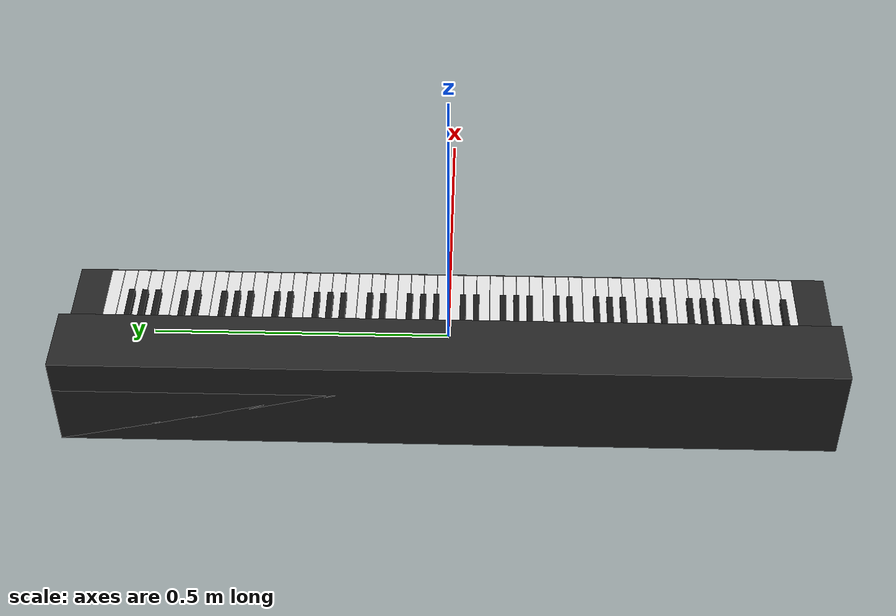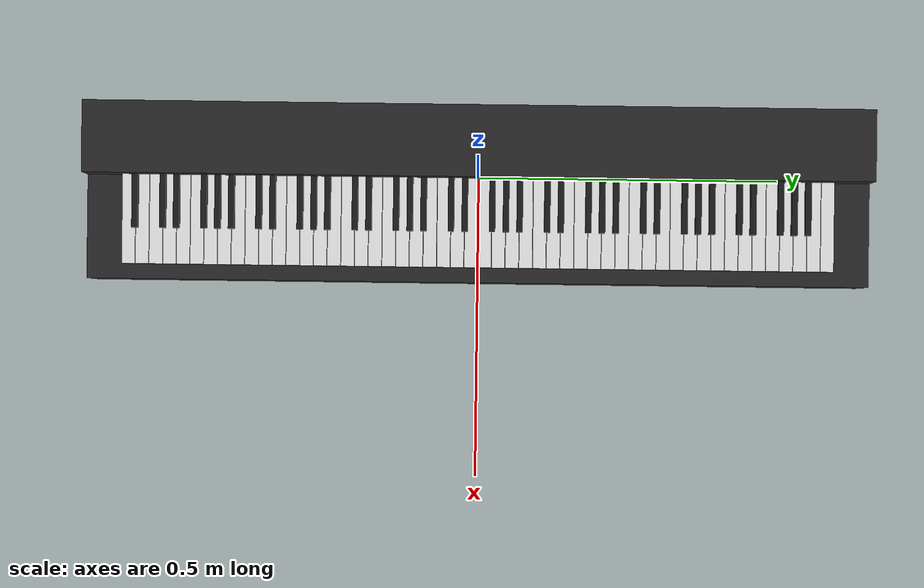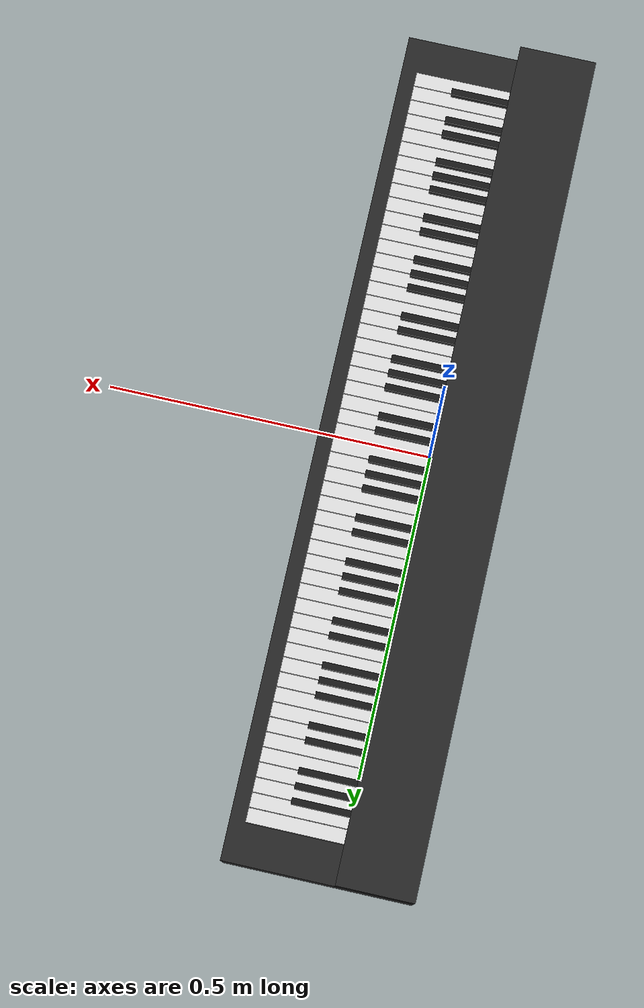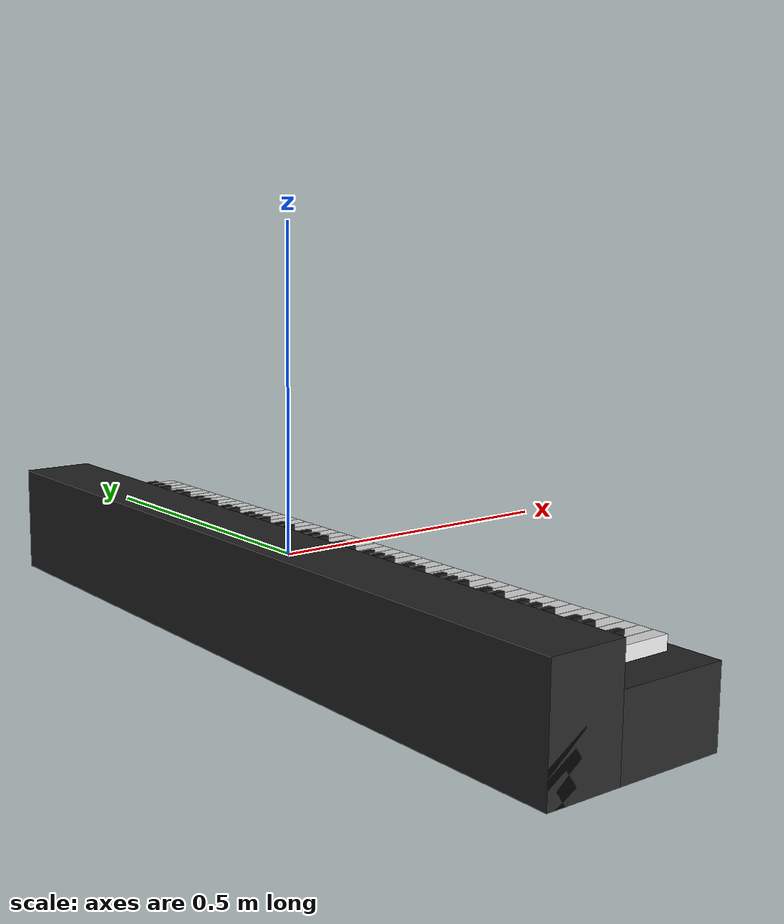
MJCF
<mujoco model="piano_dep20">
  <compiler autolimits="true" angle="radian"/>
  <default>
    <default class="/">
      <joint type="hinge" axis="0 1 0"/>
      <geom type="box" contype="0" conaffinity="1"/>
      <site type="box" group="4" rgba="1 0 0 1"/>
      <default class="white_key">
        <joint pos="-0.115 0 0" stiffness="4" range="0 0.063074117896912252" springref="-0.01" armature="0.001" damping="0.050000000000000003"/>
        <geom size="0.074999999999999997 0.010999999999999999 0.010999999999999999" material="white" mass="0.040000000000000001"/>
        <site size="0.074999999999999997 0.010999999999999999 0.010999999999999999"/>
      </default>
      <default class="black_key">
        <joint pos="-0.074999999999999997 0 0" stiffness="4" range="0 0.066568163775823808" springref="-0.01" armature="0.001" damping="0.050000000000000003"/>
        <geom size="0.044999999999999998 0.0050000000000000001 0.0089999999999999993" material="black" mass="0.02"/>
        <site size="0.044999999999999998 0.0050000000000000001 0.0089999999999999993"/>
      </default>
    </default>
  </default>
  <asset>
    <material name="white" class="/" rgba="0.90000000000000002 0.90000000000000002 0.90000000000000002 1"/>
    <material name="black" class="/" rgba="0.10000000000000001 0.10000000000000001 0.10000000000000001 1"/>
  </asset>
  <worldbody>
    <body name="piano">
      <body name="base">
        <inertial pos="-0.059999999999999998 0 -0.050000000000000017" mass="10" diaginertia="0.10000000000000001 0.10000000000000001 0.10000000000000001"/>
        <geom name="base_1" class="/" type="box" size="0.059999999999999998 0.66000000000000003 0.089999999999999997" rgba="0.14999999999999999 0.14999999999999999 0.14999999999999999 1" pos="-0.059999999999999998 0 -0.050000000000000017"/>
        <geom name="base_2" class="/" type="box" size="0.14749999999999999 0.66000000000000003 0.059000000000000011" rgba="0.14999999999999999 0.14999999999999999 0.14999999999999999 1" pos="0.027499999999999997 0 -0.081000000000000003"/>
      </body>
      <body name="white_key_0" pos="0.074999999999999997 -0.58649999999999991 -0.010999999999999999">
        <geom name="white_key_geom_0" class="white_key"/>
        <joint name="white_joint_0" class="white_key"/>
        <site name="white_key_site_0" class="white_key"/>
      </body>
      <body name="black_key_1" pos="0.044999999999999998 -0.57499999999999996 0.0035000000000000014">
        <geom name="black_key_geom_1" class="black_key"/>
        <joint name="black_joint_1" class="black_key"/>
        <site name="black_key_site_1" class="black_key"/>
      </body>
      <body name="white_key_2" pos="0.074999999999999997 -0.56349999999999989 -0.010999999999999999">
        <geom name="white_key_geom_2" class="white_key"/>
        <joint name="white_joint_2" class="white_key"/>
        <site name="white_key_site_2" class="white_key"/>
      </body>
      <body name="white_key_3" pos="0.074999999999999997 -0.54049999999999987 -0.010999999999999999">
        <geom name="white_key_geom_3" class="white_key"/>
        <joint name="white_joint_3" class="white_key"/>
        <site name="white_key_site_3" class="white_key"/>
      </body>
      <body name="black_key_4" pos="0.044999999999999998 -0.52849999999999986 0.0035000000000000014">
        <geom name="black_key_geom_4" class="black_key"/>
        <joint name="black_joint_4" class="black_key"/>
        <site name="black_key_site_4" class="black_key"/>
      </body>
      <body name="white_key_5" pos="0.074999999999999997 -0.51749999999999985 -0.010999999999999999">
        <geom name="white_key_geom_5" class="white_key"/>
        <joint name="white_joint_5" class="white_key"/>
        <site name="white_key_site_5" class="white_key"/>
      </body>
      <body name="black_key_6" pos="0.044999999999999998 -0.50549999999999984 0.0035000000000000014">
        <geom name="black_key_geom_6" class="black_key"/>
        <joint name="black_joint_6" class="black_key"/>
        <site name="black_key_site_6" class="black_key"/>
      </body>
      <body name="white_key_7" pos="0.074999999999999997 -0.49449999999999994 -0.010999999999999999">
        <geom name="white_key_geom_7" class="white_key"/>
        <joint name="white_joint_7" class="white_key"/>
        <site name="white_key_site_7" class="white_key"/>
      </body>
      <body name="white_key_8" pos="0.074999999999999997 -0.47149999999999992 -0.010999999999999999">
        <geom name="white_key_geom_8" class="white_key"/>
        <joint name="white_joint_8" class="white_key"/>
        <site name="white_key_site_8" class="white_key"/>
      </body>
      <body name="black_key_9" pos="0.044999999999999998 -0.45949999999999991 0.0035000000000000014">
        <geom name="black_key_geom_9" class="black_key"/>
        <joint name="black_joint_9" class="black_key"/>
        <site name="black_key_site_9" class="black_key"/>
      </body>
      <body name="white_key_10" pos="0.074999999999999997 -0.4484999999999999 -0.010999999999999999">
        <geom name="white_key_geom_10" class="white_key"/>
        <joint name="white_joint_10" class="white_key"/>
        <site name="white_key_site_10" class="white_key"/>
      </body>
      <body name="black_key_11" pos="0.044999999999999998 -0.43649999999999989 0.0035000000000000014">
        <geom name="black_key_geom_11" class="black_key"/>
        <joint name="black_joint_11" class="black_key"/>
        <site name="black_key_site_11" class="black_key"/>
      </body>
      <body name="white_key_12" pos="0.074999999999999997 -0.42549999999999988 -0.010999999999999999">
        <geom name="white_key_geom_12" class="white_key"/>
        <joint name="white_joint_12" class="white_key"/>
        <site name="white_key_site_12" class="white_key"/>
      </body>
      <body name="black_key_13" pos="0.044999999999999998 -0.41349999999999998 0.0035000000000000014">
        <geom name="black_key_geom_13" class="black_key"/>
        <joint name="black_joint_13" class="black_key"/>
        <site name="black_key_site_13" class="black_key"/>
      </body>
      <body name="white_key_14" pos="0.074999999999999997 -0.40249999999999991 -0.010999999999999999">
        <geom name="white_key_geom_14" class="white_key"/>
        <joint name="white_joint_14" class="white_key"/>
        <site name="white_key_site_14" class="white_key"/>
      </body>
      <body name="white_key_15" pos="0.074999999999999997 -0.37949999999999995 -0.010999999999999999">
        <geom name="white_key_geom_15" class="white_key"/>
        <joint name="white_joint_15" class="white_key"/>
        <site name="white_key_site_15" class="white_key"/>
      </body>
      <body name="black_key_16" pos="0.044999999999999998 -0.36749999999999994 0.0035000000000000014">
        <geom name="black_key_geom_16" class="black_key"/>
        <joint name="black_joint_16" class="black_key"/>
        <site name="black_key_site_16" class="black_key"/>
      </body>
      <body name="white_key_17" pos="0.074999999999999997 -0.35649999999999993 -0.010999999999999999">
        <geom name="white_key_geom_17" class="white_key"/>
        <joint name="white_joint_17" class="white_key"/>
        <site name="white_key_site_17" class="white_key"/>
      </body>
      <body name="black_key_18" pos="0.044999999999999998 -0.34449999999999992 0.0035000000000000014">
        <geom name="black_key_geom_18" class="black_key"/>
        <joint name="black_joint_18" class="black_key"/>
        <site name="black_key_site_18" class="black_key"/>
      </body>
      <body name="white_key_19" pos="0.074999999999999997 -0.33349999999999991 -0.010999999999999999">
        <geom name="white_key_geom_19" class="white_key"/>
        <joint name="white_joint_19" class="white_key"/>
        <site name="white_key_site_19" class="white_key"/>
      </body>
      <body name="white_key_20" pos="0.074999999999999997 -0.31049999999999989 -0.010999999999999999">
        <geom name="white_key_geom_20" class="white_key"/>
        <joint name="white_joint_20" class="white_key"/>
        <site name="white_key_site_20" class="white_key"/>
      </body>
      <body name="black_key_21" pos="0.044999999999999998 -0.29849999999999988 0.0035000000000000014">
        <geom name="black_key_geom_21" class="black_key"/>
        <joint name="black_joint_21" class="black_key"/>
        <site name="black_key_site_21" class="black_key"/>
      </body>
      <body name="white_key_22" pos="0.074999999999999997 -0.28749999999999992 -0.010999999999999999">
        <geom name="white_key_geom_22" class="white_key"/>
        <joint name="white_joint_22" class="white_key"/>
        <site name="white_key_site_22" class="white_key"/>
      </body>
      <body name="black_key_23" pos="0.044999999999999998 -0.27549999999999986 0.0035000000000000014">
        <geom name="black_key_geom_23" class="black_key"/>
        <joint name="black_joint_23" class="black_key"/>
        <site name="black_key_site_23" class="black_key"/>
      </body>
      <body name="white_key_24" pos="0.074999999999999997 -0.2644999999999999 -0.010999999999999999">
        <geom name="white_key_geom_24" class="white_key"/>
        <joint name="white_joint_24" class="white_key"/>
        <site name="white_key_site_24" class="white_key"/>
      </body>
      <body name="black_key_25" pos="0.044999999999999998 -0.25249999999999995 0.0035000000000000014">
        <geom name="black_key_geom_25" class="black_key"/>
        <joint name="black_joint_25" class="black_key"/>
        <site name="black_key_site_25" class="black_key"/>
      </body>
      <body name="white_key_26" pos="0.074999999999999997 -0.24149999999999994 -0.010999999999999999">
        <geom name="white_key_geom_26" class="white_key"/>
        <joint name="white_joint_26" class="white_key"/>
        <site name="white_key_site_26" class="white_key"/>
      </body>
      <body name="white_key_27" pos="0.074999999999999997 -0.21849999999999992 -0.010999999999999999">
        <geom name="white_key_geom_27" class="white_key"/>
        <joint name="white_joint_27" class="white_key"/>
        <site name="white_key_site_27" class="white_key"/>
      </body>
      <body name="black_key_28" pos="0.044999999999999998 -0.20649999999999991 0.0035000000000000014">
        <geom name="black_key_geom_28" class="black_key"/>
        <joint name="black_joint_28" class="black_key"/>
        <site name="black_key_site_28" class="black_key"/>
      </body>
      <body name="white_key_29" pos="0.074999999999999997 -0.1954999999999999 -0.010999999999999999">
        <geom name="white_key_geom_29" class="white_key"/>
        <joint name="white_joint_29" class="white_key"/>
        <site name="white_key_site_29" class="white_key"/>
      </body>
      <body name="black_key_30" pos="0.044999999999999998 -0.18349999999999989 0.0035000000000000014">
        <geom name="black_key_geom_30" class="black_key"/>
        <joint name="black_joint_30" class="black_key"/>
        <site name="black_key_site_30" class="black_key"/>
      </body>
      <body name="white_key_31" pos="0.074999999999999997 -0.17249999999999993 -0.010999999999999999">
        <geom name="white_key_geom_31" class="white_key"/>
        <joint name="white_joint_31" class="white_key"/>
        <site name="white_key_site_31" class="white_key"/>
      </body>
      <body name="white_key_32" pos="0.074999999999999997 -0.14949999999999991 -0.010999999999999999">
        <geom name="white_key_geom_32" class="white_key"/>
        <joint name="white_joint_32" class="white_key"/>
        <site name="white_key_site_32" class="white_key"/>
      </body>
      <body name="black_key_33" pos="0.044999999999999998 -0.1374999999999999 0.0035000000000000014">
        <geom name="black_key_geom_33" class="black_key"/>
        <joint name="black_joint_33" class="black_key"/>
        <site name="black_key_site_33" class="black_key"/>
      </body>
      <body name="white_key_34" pos="0.074999999999999997 -0.12649999999999995 -0.010999999999999999">
        <geom name="white_key_geom_34" class="white_key"/>
        <joint name="white_joint_34" class="white_key"/>
        <site name="white_key_site_34" class="white_key"/>
      </body>
      <body name="black_key_35" pos="0.044999999999999998 -0.11449999999999988 0.0035000000000000014">
        <geom name="black_key_geom_35" class="black_key"/>
        <joint name="black_joint_35" class="black_key"/>
        <site name="black_key_site_35" class="black_key"/>
      </body>
      <body name="white_key_36" pos="0.074999999999999997 -0.10349999999999993 -0.010999999999999999">
        <geom name="white_key_geom_36" class="white_key"/>
        <joint name="white_joint_36" class="white_key"/>
        <site name="white_key_site_36" class="white_key"/>
      </body>
      <body name="black_key_37" pos="0.044999999999999998 -0.09149999999999997 0.0035000000000000014">
        <geom name="black_key_geom_37" class="black_key"/>
        <joint name="black_joint_37" class="black_key"/>
        <site name="black_key_site_37" class="black_key"/>
      </body>
      <body name="white_key_38" pos="0.074999999999999997 -0.080499999999999905 -0.010999999999999999">
        <geom name="white_key_geom_38" class="white_key"/>
        <joint name="white_joint_38" class="white_key"/>
        <site name="white_key_site_38" class="white_key"/>
      </body>
      <body name="white_key_39" pos="0.074999999999999997 -0.057499999999999885 -0.010999999999999999">
        <geom name="white_key_geom_39" class="white_key"/>
        <joint name="white_joint_39" class="white_key"/>
        <site name="white_key_site_39" class="white_key"/>
      </body>
      <body name="black_key_40" pos="0.044999999999999998 -0.045499999999999874 0.0035000000000000014">
        <geom name="black_key_geom_40" class="black_key"/>
        <joint name="black_joint_40" class="black_key"/>
        <site name="black_key_site_40" class="black_key"/>
      </body>
      <body name="white_key_41" pos="0.074999999999999997 -0.034499999999999864 -0.010999999999999999">
        <geom name="white_key_geom_41" class="white_key"/>
        <joint name="white_joint_41" class="white_key"/>
        <site name="white_key_site_41" class="white_key"/>
      </body>
      <body name="black_key_42" pos="0.044999999999999998 -0.022499999999999853 0.0035000000000000014">
        <geom name="black_key_geom_42" class="black_key"/>
        <joint name="black_joint_42" class="black_key"/>
        <site name="black_key_site_42" class="black_key"/>
      </body>
      <body name="white_key_43" pos="0.074999999999999997 -0.011499999999999955 -0.010999999999999999">
        <geom name="white_key_geom_43" class="white_key"/>
        <joint name="white_joint_43" class="white_key"/>
        <site name="white_key_site_43" class="white_key"/>
      </body>
      <body name="white_key_44" pos="0.074999999999999997 0.011500000000000066 -0.010999999999999999">
        <geom name="white_key_geom_44" class="white_key"/>
        <joint name="white_joint_44" class="white_key"/>
        <site name="white_key_site_44" class="white_key"/>
      </body>
      <body name="black_key_45" pos="0.044999999999999998 0.023500000000000076 0.0035000000000000014">
        <geom name="black_key_geom_45" class="black_key"/>
        <joint name="black_joint_45" class="black_key"/>
        <site name="black_key_site_45" class="black_key"/>
      </body>
      <body name="white_key_46" pos="0.074999999999999997 0.034500000000000086 -0.010999999999999999">
        <geom name="white_key_geom_46" class="white_key"/>
        <joint name="white_joint_46" class="white_key"/>
        <site name="white_key_site_46" class="white_key"/>
      </body>
      <body name="black_key_47" pos="0.044999999999999998 0.046500000000000097 0.0035000000000000014">
        <geom name="black_key_geom_47" class="black_key"/>
        <joint name="black_joint_47" class="black_key"/>
        <site name="black_key_site_47" class="black_key"/>
      </body>
      <body name="white_key_48" pos="0.074999999999999997 0.057500000000000107 -0.010999999999999999">
        <geom name="white_key_geom_48" class="white_key"/>
        <joint name="white_joint_48" class="white_key"/>
        <site name="white_key_site_48" class="white_key"/>
      </body>
      <body name="black_key_49" pos="0.044999999999999998 0.069500000000000006 0.0035000000000000014">
        <geom name="black_key_geom_49" class="black_key"/>
        <joint name="black_joint_49" class="black_key"/>
        <site name="black_key_site_49" class="black_key"/>
      </body>
      <body name="white_key_50" pos="0.074999999999999997 0.080500000000000127 -0.010999999999999999">
        <geom name="white_key_geom_50" class="white_key"/>
        <joint name="white_joint_50" class="white_key"/>
        <site name="white_key_site_50" class="white_key"/>
      </body>
      <body name="white_key_51" pos="0.074999999999999997 0.10350000000000004 -0.010999999999999999">
        <geom name="white_key_geom_51" class="white_key"/>
        <joint name="white_joint_51" class="white_key"/>
        <site name="white_key_site_51" class="white_key"/>
      </body>
      <body name="black_key_52" pos="0.044999999999999998 0.11550000000000005 0.0035000000000000014">
        <geom name="black_key_geom_52" class="black_key"/>
        <joint name="black_joint_52" class="black_key"/>
        <site name="black_key_site_52" class="black_key"/>
      </body>
      <body name="white_key_53" pos="0.074999999999999997 0.12650000000000006 -0.010999999999999999">
        <geom name="white_key_geom_53" class="white_key"/>
        <joint name="white_joint_53" class="white_key"/>
        <site name="white_key_site_53" class="white_key"/>
      </body>
      <body name="black_key_54" pos="0.044999999999999998 0.13850000000000007 0.0035000000000000014">
        <geom name="black_key_geom_54" class="black_key"/>
        <joint name="black_joint_54" class="black_key"/>
        <site name="black_key_site_54" class="black_key"/>
      </body>
      <body name="white_key_55" pos="0.074999999999999997 0.14950000000000008 -0.010999999999999999">
        <geom name="white_key_geom_55" class="white_key"/>
        <joint name="white_joint_55" class="white_key"/>
        <site name="white_key_site_55" class="white_key"/>
      </body>
      <body name="white_key_56" pos="0.074999999999999997 0.1725000000000001 -0.010999999999999999">
        <geom name="white_key_geom_56" class="white_key"/>
        <joint name="white_joint_56" class="white_key"/>
        <site name="white_key_site_56" class="white_key"/>
      </body>
      <body name="black_key_57" pos="0.044999999999999998 0.18450000000000011 0.0035000000000000014">
        <geom name="black_key_geom_57" class="black_key"/>
        <joint name="black_joint_57" class="black_key"/>
        <site name="black_key_site_57" class="black_key"/>
      </body>
      <body name="white_key_58" pos="0.074999999999999997 0.19550000000000012 -0.010999999999999999">
        <geom name="white_key_geom_58" class="white_key"/>
        <joint name="white_joint_58" class="white_key"/>
        <site name="white_key_site_58" class="white_key"/>
      </body>
      <body name="black_key_59" pos="0.044999999999999998 0.20750000000000013 0.0035000000000000014">
        <geom name="black_key_geom_59" class="black_key"/>
        <joint name="black_joint_59" class="black_key"/>
        <site name="black_key_site_59" class="black_key"/>
      </body>
      <body name="white_key_60" pos="0.074999999999999997 0.21850000000000003 -0.010999999999999999">
        <geom name="white_key_geom_60" class="white_key"/>
        <joint name="white_joint_60" class="white_key"/>
        <site name="white_key_site_60" class="white_key"/>
      </body>
      <body name="black_key_61" pos="0.044999999999999998 0.23050000000000004 0.0035000000000000014">
        <geom name="black_key_geom_61" class="black_key"/>
        <joint name="black_joint_61" class="black_key"/>
        <site name="black_key_site_61" class="black_key"/>
      </body>
      <body name="white_key_62" pos="0.074999999999999997 0.24150000000000005 -0.010999999999999999">
        <geom name="white_key_geom_62" class="white_key"/>
        <joint name="white_joint_62" class="white_key"/>
        <site name="white_key_site_62" class="white_key"/>
      </body>
      <body name="white_key_63" pos="0.074999999999999997 0.26450000000000007 -0.010999999999999999">
        <geom name="white_key_geom_63" class="white_key"/>
        <joint name="white_joint_63" class="white_key"/>
        <site name="white_key_site_63" class="white_key"/>
      </body>
      <body name="black_key_64" pos="0.044999999999999998 0.27650000000000008 0.0035000000000000014">
        <geom name="black_key_geom_64" class="black_key"/>
        <joint name="black_joint_64" class="black_key"/>
        <site name="black_key_site_64" class="black_key"/>
      </body>
      <body name="white_key_65" pos="0.074999999999999997 0.28750000000000009 -0.010999999999999999">
        <geom name="white_key_geom_65" class="white_key"/>
        <joint name="white_joint_65" class="white_key"/>
        <site name="white_key_site_65" class="white_key"/>
      </body>
      <body name="black_key_66" pos="0.044999999999999998 0.2995000000000001 0.0035000000000000014">
        <geom name="black_key_geom_66" class="black_key"/>
        <joint name="black_joint_66" class="black_key"/>
        <site name="black_key_site_66" class="black_key"/>
      </body>
      <body name="white_key_67" pos="0.074999999999999997 0.31050000000000011 -0.010999999999999999">
        <geom name="white_key_geom_67" class="white_key"/>
        <joint name="white_joint_67" class="white_key"/>
        <site name="white_key_site_67" class="white_key"/>
      </body>
      <body name="white_key_68" pos="0.074999999999999997 0.33350000000000002 -0.010999999999999999">
        <geom name="white_key_geom_68" class="white_key"/>
        <joint name="white_joint_68" class="white_key"/>
        <site name="white_key_site_68" class="white_key"/>
      </body>
      <body name="black_key_69" pos="0.044999999999999998 0.34550000000000003 0.0035000000000000014">
        <geom name="black_key_geom_69" class="black_key"/>
        <joint name="black_joint_69" class="black_key"/>
        <site name="black_key_site_69" class="black_key"/>
      </body>
      <body name="white_key_70" pos="0.074999999999999997 0.35650000000000004 -0.010999999999999999">
        <geom name="white_key_geom_70" class="white_key"/>
        <joint name="white_joint_70" class="white_key"/>
        <site name="white_key_site_70" class="white_key"/>
      </body>
      <body name="black_key_71" pos="0.044999999999999998 0.36850000000000005 0.0035000000000000014">
        <geom name="black_key_geom_71" class="black_key"/>
        <joint name="black_joint_71" class="black_key"/>
        <site name="black_key_site_71" class="black_key"/>
      </body>
      <body name="white_key_72" pos="0.074999999999999997 0.37950000000000006 -0.010999999999999999">
        <geom name="white_key_geom_72" class="white_key"/>
        <joint name="white_joint_72" class="white_key"/>
        <site name="white_key_site_72" class="white_key"/>
      </body>
      <body name="black_key_73" pos="0.044999999999999998 0.39149999999999996 0.0035000000000000014">
        <geom name="black_key_geom_73" class="black_key"/>
        <joint name="black_joint_73" class="black_key"/>
        <site name="black_key_site_73" class="black_key"/>
      </body>
      <body name="white_key_74" pos="0.074999999999999997 0.40250000000000008 -0.010999999999999999">
        <geom name="white_key_geom_74" class="white_key"/>
        <joint name="white_joint_74" class="white_key"/>
        <site name="white_key_site_74" class="white_key"/>
      </body>
      <body name="white_key_75" pos="0.074999999999999997 0.4255000000000001 -0.010999999999999999">
        <geom name="white_key_geom_75" class="white_key"/>
        <joint name="white_joint_75" class="white_key"/>
        <site name="white_key_site_75" class="white_key"/>
      </body>
      <body name="black_key_76" pos="0.044999999999999998 0.43750000000000011 0.0035000000000000014">
        <geom name="black_key_geom_76" class="black_key"/>
        <joint name="black_joint_76" class="black_key"/>
        <site name="black_key_site_76" class="black_key"/>
      </body>
      <body name="white_key_77" pos="0.074999999999999997 0.44850000000000001 -0.010999999999999999">
        <geom name="white_key_geom_77" class="white_key"/>
        <joint name="white_joint_77" class="white_key"/>
        <site name="white_key_site_77" class="white_key"/>
      </body>
      <body name="black_key_78" pos="0.044999999999999998 0.46050000000000013 0.0035000000000000014">
        <geom name="black_key_geom_78" class="black_key"/>
        <joint name="black_joint_78" class="black_key"/>
        <site name="black_key_site_78" class="black_key"/>
      </body>
      <body name="white_key_79" pos="0.074999999999999997 0.47150000000000014 -0.010999999999999999">
        <geom name="white_key_geom_79" class="white_key"/>
        <joint name="white_joint_79" class="white_key"/>
        <site name="white_key_site_79" class="white_key"/>
      </body>
      <body name="white_key_80" pos="0.074999999999999997 0.49450000000000005 -0.010999999999999999">
        <geom name="white_key_geom_80" class="white_key"/>
        <joint name="white_joint_80" class="white_key"/>
        <site name="white_key_site_80" class="white_key"/>
      </body>
      <body name="black_key_81" pos="0.044999999999999998 0.50650000000000006 0.0035000000000000014">
        <geom name="black_key_geom_81" class="black_key"/>
        <joint name="black_joint_81" class="black_key"/>
        <site name="black_key_site_81" class="black_key"/>
      </body>
      <body name="white_key_82" pos="0.074999999999999997 0.51750000000000018 -0.010999999999999999">
        <geom name="white_key_geom_82" class="white_key"/>
        <joint name="white_joint_82" class="white_key"/>
        <site name="white_key_site_82" class="white_key"/>
      </body>
      <body name="black_key_83" pos="0.044999999999999998 0.52950000000000008 0.0035000000000000014">
        <geom name="black_key_geom_83" class="black_key"/>
        <joint name="black_joint_83" class="black_key"/>
        <site name="black_key_site_83" class="black_key"/>
      </body>
      <body name="white_key_84" pos="0.074999999999999997 0.54050000000000009 -0.010999999999999999">
        <geom name="white_key_geom_84" class="white_key"/>
        <joint name="white_joint_84" class="white_key"/>
        <site name="white_key_site_84" class="white_key"/>
      </body>
      <body name="black_key_85" pos="0.044999999999999998 0.55249999999999999 0.0035000000000000014">
        <geom name="black_key_geom_85" class="black_key"/>
        <joint name="black_joint_85" class="black_key"/>
        <site name="black_key_site_85" class="black_key"/>
      </body>
      <body name="white_key_86" pos="0.074999999999999997 0.5635 -0.010999999999999999">
        <geom name="white_key_geom_86" class="white_key"/>
        <joint name="white_joint_86" class="white_key"/>
        <site name="white_key_site_86" class="white_key"/>
      </body>
      <body name="white_key_87" pos="0.074999999999999997 0.58650000000000013 -0.010999999999999999">
        <geom name="white_key_geom_87" class="white_key"/>
        <joint name="white_joint_87" class="white_key"/>
        <site name="white_key_site_87" class="white_key"/>
      </body>
    </body>
  </worldbody>
</mujoco>
